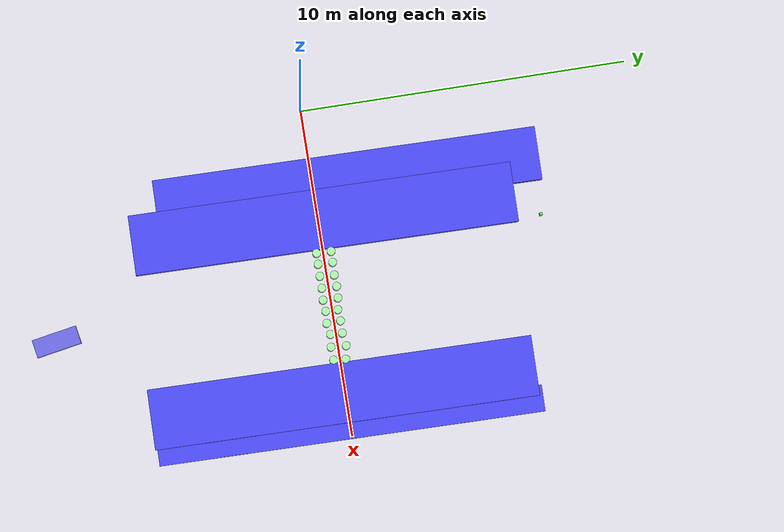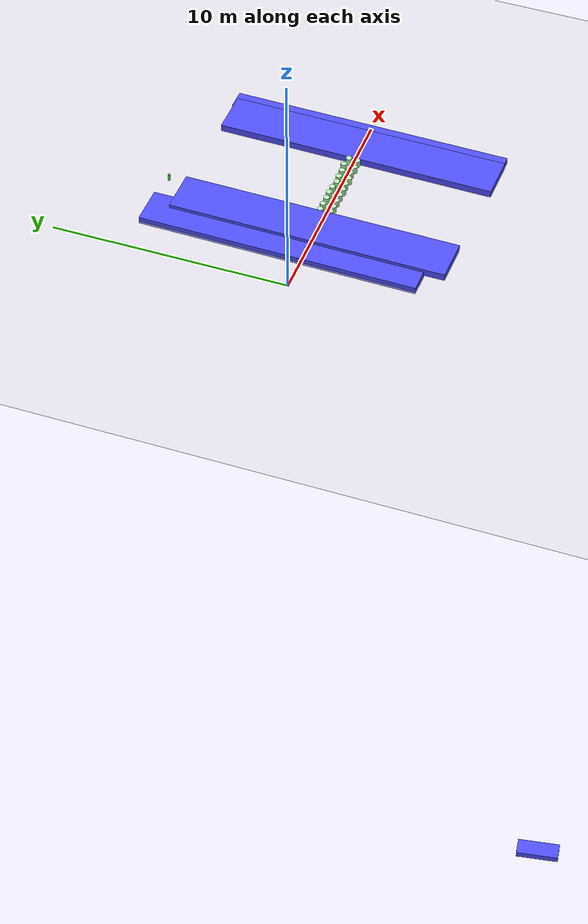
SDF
<sdf version="1.7">
 <world name="default">
  <light name="sun" type="directional">
   <pose>0 0 10 0 -0 0</pose>
   <diffuse>0.8 0.8 0.8 1</diffuse>
   <specular>0.2 0.2 0.2 1</specular>
   <attenuation>
    <range>1000</range>
    <constant>0.9</constant>
    <linear>0.01</linear>
    <quadratic>0.001</quadratic>
   </attenuation>
   <direction>-0.5 0.1 -0.9</direction>
   <spot><inner_angle>0</inner_angle><outer_angle>0</outer_angle><falloff>0</falloff></spot>
  </light>
  <model name="ground_plane">
   <static>1</static>
   <link name="link">
    <collision name="collision">
     <geometry><plane><normal>0 0 1</normal><size>100 100</size></plane></geometry>
     <surface><friction><ode><mu>100</mu><mu2>50</mu2></ode></friction></surface>
    </collision>
    <visual name="visual">
     <cast_shadows>0</cast_shadows>
     <geometry><plane><normal>0 0 1</normal><size>100 100</size></plane></geometry>
     <material>
      <script><uri>file://media/materials/scripts/gazebo.material</uri><name>Gazebo/Grey</name></script>
     </material>
    </visual>
   </link>
  </model>
  <gravity>0 0 -9.8</gravity>
  <magnetic_field>6e-06 2.3e-05 -4.2e-05</magnetic_field>
  <atmosphere type="adiabatic"/>
  <physics type="ode">
   <max_step_size>0.001</max_step_size>
   <real_time_factor>1</real_time_factor>
   <real_time_update_rate>1000</real_time_update_rate>
  </physics>
  <scene><ambient>0.4 0.4 0.4 1</ambient><background>0.7 0.7 0.7 1</background><shadows>1</shadows></scene>
  <spherical_coordinates>
   <surface_model>EARTH_WGS84</surface_model>
   <latitude_deg>0</latitude_deg>
   <longitude_deg>0</longitude_deg>
   <elevation>0</elevation>
   <heading_deg>0</heading_deg>
  </spherical_coordinates>
  <model name="ban_200_80_30_clone_clone">
   <link name="link">
    <inertial>
     <mass>1</mass>
     <inertia>
      <ixx>0.166667</ixx>
      <ixy>0</ixy>
      <ixz>0</ixz>
      <iyy>0.166667</iyy>
      <iyz>0</iyz>
      <izz>0.166667</izz>
     </inertia>
    </inertial>
    <visual name="visual">
     <geometry><box><size>2 0.8 0.3</size></box></geometry>
     <material>
      <script><name>Gazebo/Grey</name><uri>file://media/materials/scripts/gazebo.material</uri></script>
      <shader type="pixel"><normal_map>__default__</normal_map></shader>
      <ambient>0.3 0.3 1 1</ambient>
      <diffuse>0.7 0.7 0.7 1</diffuse>
      <specular>0.01 0.01 0.01 1</specular>
      <emissive>0 0 0 1</emissive>
     </material>
    </visual>
    <collision name="collision">
     <geometry><box><size>2 0.8 0.3</size></box></geometry>
     <surface>
      <friction>
       <ode><mu>1</mu><mu2>1</mu2><fdir1>0 0 0</fdir1><slip1>0</slip1><slip2>0</slip2></ode>
       <torsional>
        <coefficient>1</coefficient>
        <patch_radius>0</patch_radius>
        <surface_radius>0</surface_radius>
        <use_patch_radius>1</use_patch_radius>
        <ode><slip>0</slip></ode>
       </torsional>
      </friction>
      <bounce><restitution_coefficient>0</restitution_coefficient><threshold>1e+06</threshold></bounce>
      <contact>
       <collide_without_contact>0</collide_without_contact>
       <collide_without_contact_bitmask>1</collide_without_contact_bitmask>
       <collide_bitmask>1</collide_bitmask>
       <ode>
        <soft_cfm>0</soft_cfm>
        <soft_erp>0.2</soft_erp>
        <kp>1e+13</kp>
        <kd>1</kd>
        <max_vel>0.01</max_vel>
        <min_depth>0</min_depth>
       </ode>
       <bullet>
        <split_impulse>1</split_impulse>
        <split_impulse_penetration_threshold>-0.01</split_impulse_penetration_threshold>
        <soft_cfm>0</soft_cfm>
        <soft_erp>0.2</soft_erp>
        <kp>1e+13</kp>
        <kd>1</kd>
       </bullet>
      </contact>
     </surface>
    </collision>
   </link>
   <static>1</static>
   <pose>3.32802 -11.2985 -36.3188 0 0 -1.39548</pose>
  </model>
  <model name="ban_400_80_30_clone_clone">
   <link name="link">
    <inertial>
     <mass>1</mass>
     <inertia>
      <ixx>0.166667</ixx>
      <ixy>0</ixy>
      <ixz>0</ixz>
      <iyy>0.166667</iyy>
      <iyz>0</iyz>
      <izz>0.166667</izz>
     </inertia>
    </inertial>
    <visual name="visual">
     <geometry><box><size>11.703 1.83242 0.3</size></box></geometry>
     <material>
      <script><name>Gazebo/Grey</name><uri>file://media/materials/scripts/gazebo.material</uri></script>
      <shader type="pixel"><normal_map>__default__</normal_map></shader>
      <ambient>0.3 0.3 1 1</ambient>
      <diffuse>0.7 0.7 0.7 1</diffuse>
      <specular>0.01 0.01 0.01 1</specular>
      <emissive>0 0 0 1</emissive>
     </material>
    </visual>
    <collision name="collision">
     <geometry><box><size>11.703 1.83242 0.3</size></box></geometry>
     <surface>
      <friction>
       <ode><mu>1</mu><mu2>1</mu2><fdir1>0 0 0</fdir1><slip1>0</slip1><slip2>0</slip2></ode>
       <torsional>
        <coefficient>1</coefficient>
        <patch_radius>0</patch_radius>
        <surface_radius>0</surface_radius>
        <use_patch_radius>1</use_patch_radius>
        <ode><slip>0</slip></ode>
       </torsional>
      </friction>
      <bounce><restitution_coefficient>0</restitution_coefficient><threshold>1e+06</threshold></bounce>
      <contact>
       <collide_without_contact>0</collide_without_contact>
       <collide_without_contact_bitmask>1</collide_without_contact_bitmask>
       <collide_bitmask>1</collide_bitmask>
       <ode>
        <soft_cfm>0</soft_cfm>
        <soft_erp>0.2</soft_erp>
        <kp>1e+13</kp>
        <kd>1</kd>
        <max_vel>0.01</max_vel>
        <min_depth>0</min_depth>
       </ode>
       <bullet>
        <split_impulse>1</split_impulse>
        <split_impulse_penetration_threshold>-0.01</split_impulse_penetration_threshold>
        <soft_cfm>0</soft_cfm>
        <soft_erp>0.2</soft_erp>
        <kp>1e+13</kp>
        <kd>1</kd>
       </bullet>
      </contact>
     </surface>
    </collision>
   </link>
   <static>1</static>
   <pose>3.376 0.164957 0.141155 0 -0 1.55763</pose>
  </model>
  <model name="ban_400_80_30_clone">
   <link name="link">
    <inertial>
     <mass>1</mass>
     <inertia>
      <ixx>0.166667</ixx>
      <ixy>0</ixy>
      <ixz>0</ixz>
      <iyy>0.166667</iyy>
      <iyz>0</iyz>
      <izz>0.166667</izz>
     </inertia>
    </inertial>
    <visual name="visual">
     <geometry><box><size>11.7457 0.8 0.3</size></box></geometry>
     <material>
      <script><name>Gazebo/Grey</name><uri>file://media/materials/scripts/gazebo.material</uri></script>
      <shader type="pixel"><normal_map>__default__</normal_map></shader>
      <ambient>0.3 0.3 1 1</ambient>
      <diffuse>0.7 0.7 0.7 1</diffuse>
      <specular>0.01 0.01 0.01 1</specular>
      <emissive>0 0 0 1</emissive>
     </material>
    </visual>
    <collision name="collision">
     <geometry><box><size>11.7457 0.8 0.3</size></box></geometry>
     <surface>
      <friction>
       <ode><mu>1</mu><mu2>1</mu2><fdir1>0 0 0</fdir1><slip1>0</slip1><slip2>0</slip2></ode>
       <torsional>
        <coefficient>1</coefficient>
        <patch_radius>0</patch_radius>
        <surface_radius>0</surface_radius>
        <use_patch_radius>1</use_patch_radius>
        <ode><slip>0</slip></ode>
       </torsional>
      </friction>
      <bounce><restitution_coefficient>0</restitution_coefficient><threshold>1e+06</threshold></bounce>
      <contact>
       <collide_without_contact>0</collide_without_contact>
       <collide_without_contact_bitmask>1</collide_without_contact_bitmask>
       <collide_bitmask>1</collide_bitmask>
       <ode>
        <soft_cfm>0</soft_cfm>
        <soft_erp>0.2</soft_erp>
        <kp>1e+13</kp>
        <kd>1</kd>
        <max_vel>0.01</max_vel>
        <min_depth>0</min_depth>
       </ode>
       <bullet>
        <split_impulse>1</split_impulse>
        <split_impulse_penetration_threshold>-0.01</split_impulse_penetration_threshold>
        <soft_cfm>0</soft_cfm>
        <soft_erp>0.2</soft_erp>
        <kp>1e+13</kp>
        <kd>1</kd>
       </bullet>
      </contact>
     </surface>
    </collision>
   </link>
   <static>1</static>
   <pose>9.68721 0.016567 0 0 -0 1.55763</pose>
  </model>
  <model name="mhz_8_30_clone">
   <link name="link">
    <inertial>
     <mass>1</mass>
     <inertia>
      <ixx>0.166667</ixx>
      <ixy>0</ixy>
      <ixz>0</ixz>
      <iyy>0.166667</iyy>
      <iyz>0</iyz>
      <izz>0.166667</izz>
     </inertia>
    </inertial>
    <visual name="visual">
     <geometry><box><size>0.08 0.08 0.3</size></box></geometry>
     <material>
      <script><name>Gazebo/Grey</name><uri>file://media/materials/scripts/gazebo.material</uri></script>
      <shader type="pixel"><normal_map>__default__</normal_map></shader>
      <ambient>0.3 1 0.3 1</ambient>
      <diffuse>0.7 0.7 0.7 1</diffuse>
      <specular>0.01 0.01 0.01 1</specular>
      <emissive>0 0 0 1</emissive>
     </material>
    </visual>
    <collision name="collision">
     <geometry><box><size>0.08 0.08 0.3</size></box></geometry>
     <surface>
      <friction>
       <ode><mu>1</mu><mu2>1</mu2><fdir1>0 0 0</fdir1><slip1>0</slip1><slip2>0</slip2></ode>
       <torsional>
        <coefficient>1</coefficient>
        <patch_radius>0</patch_radius>
        <surface_radius>0</surface_radius>
        <use_patch_radius>1</use_patch_radius>
        <ode><slip>0</slip></ode>
       </torsional>
      </friction>
      <bounce><restitution_coefficient>0</restitution_coefficient><threshold>1e+06</threshold></bounce>
      <contact>
       <collide_without_contact>0</collide_without_contact>
       <collide_without_contact_bitmask>1</collide_without_contact_bitmask>
       <collide_bitmask>1</collide_bitmask>
       <ode>
        <soft_cfm>0</soft_cfm>
        <soft_erp>0.2</soft_erp>
        <kp>1e+13</kp>
        <kd>1</kd>
        <max_vel>0.01</max_vel>
        <min_depth>0</min_depth>
       </ode>
       <bullet>
        <split_impulse>1</split_impulse>
        <split_impulse_penetration_threshold>-0.01</split_impulse_penetration_threshold>
        <soft_cfm>0</soft_cfm>
        <soft_erp>0.2</soft_erp>
        <kp>1e+13</kp>
        <kd>1</kd>
       </bullet>
      </contact>
     </surface>
    </collision>
   </link>
   <static>1</static>
   <pose>4.25594 6.71166 0.134436 0 -0 0</pose>
  </model>
  <model name="ban_400_80_30_clone_clone_clone">
   <link name="link">
    <inertial>
     <mass>1</mass>
     <inertia>
      <ixx>0.166667</ixx>
      <ixy>0</ixy>
      <ixz>0</ixz>
      <iyy>0.166667</iyy>
      <iyz>0</iyz>
      <izz>0.166667</izz>
     </inertia>
    </inertial>
    <visual name="visual">
     <geometry><box><size>11.703 1.83242 0.3</size></box></geometry>
     <material>
      <script><name>Gazebo/Grey</name><uri>file://media/materials/scripts/gazebo.material</uri></script>
      <shader type="pixel"><normal_map>__default__</normal_map></shader>
      <ambient>0.3 0.3 1 1</ambient>
      <diffuse>0.7 0.7 0.7 1</diffuse>
      <specular>0.01 0.01 0.01 1</specular>
      <emissive>0 0 0 1</emissive>
     </material>
    </visual>
    <collision name="collision">
     <geometry><box><size>11.703 1.83242 0.3</size></box></geometry>
     <surface>
      <friction>
       <ode><mu>1</mu><mu2>1</mu2><fdir1>0 0 0</fdir1><slip1>0</slip1><slip2>0</slip2></ode>
       <torsional>
        <coefficient>1</coefficient>
        <patch_radius>0</patch_radius>
        <surface_radius>0</surface_radius>
        <use_patch_radius>1</use_patch_radius>
        <ode><slip>0</slip></ode>
       </torsional>
      </friction>
      <bounce><restitution_coefficient>0</restitution_coefficient><threshold>1e+06</threshold></bounce>
      <contact>
       <collide_without_contact>0</collide_without_contact>
       <collide_without_contact_bitmask>1</collide_without_contact_bitmask>
       <collide_bitmask>1</collide_bitmask>
       <ode>
        <soft_cfm>0</soft_cfm>
        <soft_erp>0.2</soft_erp>
        <kp>1e+13</kp>
        <kd>1</kd>
        <max_vel>0.01</max_vel>
        <min_depth>0</min_depth>
       </ode>
       <bullet>
        <split_impulse>1</split_impulse>
        <split_impulse_penetration_threshold>-0.01</split_impulse_penetration_threshold>
        <soft_cfm>0</soft_cfm>
        <soft_erp>0.2</soft_erp>
        <kp>1e+13</kp>
        <kd>1</kd>
       </bullet>
      </contact>
     </surface>
    </collision>
   </link>
   <static>1</static>
   <pose>8.67792 -0.051809 0.139007 0 -0 1.55763</pose>
  </model>
  <model name="mhz_y_25_30_clone_13_clone_clone_9_clone">
   <link name="link">
    <inertial>
     <mass>1</mass>
     <inertia><ixx>0.145833</ixx><ixy>0</ixy><ixz>0</ixz><iyy>0.145833</iyy><iyz>0</iyz><izz>0.125</izz></inertia>
    </inertial>
    <visual name="visual">
     <geometry><cylinder><radius>0.125</radius><length>0.3</length></cylinder></geometry>
     <material>
      <script><name>Gazebo/Grey</name><uri>file://media/materials/scripts/gazebo.material</uri></script>
      <shader type="pixel"><normal_map>__default__</normal_map></shader>
      <ambient>0 1 0 0</ambient>
      <diffuse>0.7 1 0.7 1</diffuse>
      <specular>0.01 0.01 0.01 1</specular>
      <emissive>0 0 0 1</emissive>
     </material>
    </visual>
    <collision name="collision">
     <geometry><cylinder><radius>0.125</radius><length>0.3</length></cylinder></geometry>
     <surface>
      <friction>
       <ode><mu>1</mu><mu2>1</mu2><fdir1>0 0 0</fdir1><slip1>0</slip1><slip2>0</slip2></ode>
       <torsional>
        <coefficient>1</coefficient>
        <patch_radius>0</patch_radius>
        <surface_radius>0</surface_radius>
        <use_patch_radius>1</use_patch_radius>
        <ode><slip>0</slip></ode>
       </torsional>
      </friction>
      <bounce><restitution_coefficient>0</restitution_coefficient><threshold>1e+06</threshold></bounce>
      <contact>
       <collide_without_contact>0</collide_without_contact>
       <collide_without_contact_bitmask>1</collide_without_contact_bitmask>
       <collide_bitmask>1</collide_bitmask>
       <ode>
        <soft_cfm>0</soft_cfm>
        <soft_erp>0.2</soft_erp>
        <kp>1e+13</kp>
        <kd>1</kd>
        <max_vel>0.01</max_vel>
        <min_depth>0</min_depth>
       </ode>
       <bullet>
        <split_impulse>1</split_impulse>
        <split_impulse_penetration_threshold>-0.01</split_impulse_penetration_threshold>
        <soft_cfm>0</soft_cfm>
        <soft_erp>0.2</soft_erp>
        <kp>1e+13</kp>
        <kd>1</kd>
       </bullet>
      </contact>
     </surface>
    </collision>
   </link>
   <static>1</static>
   <pose>4.3916 0.246906 0.14679 0 -0 0</pose>
  </model>
  <model name="mhz_y_25_30_clone_13_clone_clone_9_clone_0">
   <link name="link">
    <inertial>
     <mass>1</mass>
     <inertia><ixx>0.145833</ixx><ixy>0</ixy><ixz>0</ixz><iyy>0.145833</iyy><iyz>0</iyz><izz>0.125</izz></inertia>
    </inertial>
    <visual name="visual">
     <geometry><cylinder><radius>0.125</radius><length>0.3</length></cylinder></geometry>
     <material>
      <script><name>Gazebo/Grey</name><uri>file://media/materials/scripts/gazebo.material</uri></script>
      <shader type="pixel"><normal_map>__default__</normal_map></shader>
      <ambient>0 1 0 0</ambient>
      <diffuse>0.7 1 0.7 1</diffuse>
      <specular>0.01 0.01 0.01 1</specular>
      <emissive>0 0 0 1</emissive>
     </material>
    </visual>
    <collision name="collision">
     <geometry><cylinder><radius>0.125</radius><length>0.3</length></cylinder></geometry>
     <surface>
      <friction>
       <ode><mu>1</mu><mu2>1</mu2><fdir1>0 0 0</fdir1><slip1>0</slip1><slip2>0</slip2></ode>
       <torsional>
        <coefficient>1</coefficient>
        <patch_radius>0</patch_radius>
        <surface_radius>0</surface_radius>
        <use_patch_radius>1</use_patch_radius>
        <ode><slip>0</slip></ode>
       </torsional>
      </friction>
      <bounce><restitution_coefficient>0</restitution_coefficient><threshold>1e+06</threshold></bounce>
      <contact>
       <collide_without_contact>0</collide_without_contact>
       <collide_without_contact_bitmask>1</collide_without_contact_bitmask>
       <collide_bitmask>1</collide_bitmask>
       <ode>
        <soft_cfm>0</soft_cfm>
        <soft_erp>0.2</soft_erp>
        <kp>1e+13</kp>
        <kd>1</kd>
        <max_vel>0.01</max_vel>
        <min_depth>0</min_depth>
       </ode>
       <bullet>
        <split_impulse>1</split_impulse>
        <split_impulse_penetration_threshold>-0.01</split_impulse_penetration_threshold>
        <soft_cfm>0</soft_cfm>
        <soft_erp>0.2</soft_erp>
        <kp>1e+13</kp>
        <kd>1</kd>
       </bullet>
      </contact>
     </surface>
    </collision>
   </link>
   <static>1</static>
   <pose>4.38543 -0.19628 0.14679 0 -0 0</pose>
  </model>
  <model name="mhz_y_25_30_clone_13_clone_clone_9_clone_1">
   <link name="link">
    <inertial>
     <mass>1</mass>
     <inertia><ixx>0.145833</ixx><ixy>0</ixy><ixz>0</ixz><iyy>0.145833</iyy><iyz>0</iyz><izz>0.125</izz></inertia>
    </inertial>
    <visual name="visual">
     <geometry><cylinder><radius>0.125</radius><length>0.3</length></cylinder></geometry>
     <material>
      <script><name>Gazebo/Grey</name><uri>file://media/materials/scripts/gazebo.material</uri></script>
      <shader type="pixel"><normal_map>__default__</normal_map></shader>
      <ambient>0 1 0 0</ambient>
      <diffuse>0.7 1 0.7 1</diffuse>
      <specular>0.01 0.01 0.01 1</specular>
      <emissive>0 0 0 1</emissive>
     </material>
    </visual>
    <collision name="collision">
     <geometry><cylinder><radius>0.125</radius><length>0.3</length></cylinder></geometry>
     <surface>
      <friction>
       <ode><mu>1</mu><mu2>1</mu2><fdir1>0 0 0</fdir1><slip1>0</slip1><slip2>0</slip2></ode>
       <torsional>
        <coefficient>1</coefficient>
        <patch_radius>0</patch_radius>
        <surface_radius>0</surface_radius>
        <use_patch_radius>1</use_patch_radius>
        <ode><slip>0</slip></ode>
       </torsional>
      </friction>
      <bounce><restitution_coefficient>0</restitution_coefficient><threshold>1e+06</threshold></bounce>
      <contact>
       <collide_without_contact>0</collide_without_contact>
       <collide_without_contact_bitmask>1</collide_without_contact_bitmask>
       <collide_bitmask>1</collide_bitmask>
       <ode>
        <soft_cfm>0</soft_cfm>
        <soft_erp>0.2</soft_erp>
        <kp>1e+13</kp>
        <kd>1</kd>
        <max_vel>0.01</max_vel>
        <min_depth>0</min_depth>
       </ode>
       <bullet>
        <split_impulse>1</split_impulse>
        <split_impulse_penetration_threshold>-0.01</split_impulse_penetration_threshold>
        <soft_cfm>0</soft_cfm>
        <soft_erp>0.2</soft_erp>
        <kp>1e+13</kp>
        <kd>1</kd>
       </bullet>
      </contact>
     </surface>
    </collision>
   </link>
   <static>1</static>
   <pose>4.71749 -0.205645 0.14679 0 -0 0</pose>
  </model>
  <model name="mhz_y_25_30_clone_13_clone_clone_9_clone_2">
   <link name="link">
    <inertial>
     <mass>1</mass>
     <inertia><ixx>0.145833</ixx><ixy>0</ixy><ixz>0</ixz><iyy>0.145833</iyy><iyz>0</iyz><izz>0.125</izz></inertia>
    </inertial>
    <visual name="visual">
     <geometry><cylinder><radius>0.125</radius><length>0.3</length></cylinder></geometry>
     <material>
      <script><name>Gazebo/Grey</name><uri>file://media/materials/scripts/gazebo.material</uri></script>
      <shader type="pixel"><normal_map>__default__</normal_map></shader>
      <ambient>0 1 0 0</ambient>
      <diffuse>0.7 1 0.7 1</diffuse>
      <specular>0.01 0.01 0.01 1</specular>
      <emissive>0 0 0 1</emissive>
     </material>
    </visual>
    <collision name="collision">
     <geometry><cylinder><radius>0.125</radius><length>0.3</length></cylinder></geometry>
     <surface>
      <friction>
       <ode><mu>1</mu><mu2>1</mu2><fdir1>0 0 0</fdir1><slip1>0</slip1><slip2>0</slip2></ode>
       <torsional>
        <coefficient>1</coefficient>
        <patch_radius>0</patch_radius>
        <surface_radius>0</surface_radius>
        <use_patch_radius>1</use_patch_radius>
        <ode><slip>0</slip></ode>
       </torsional>
      </friction>
      <bounce><restitution_coefficient>0</restitution_coefficient><threshold>1e+06</threshold></bounce>
      <contact>
       <collide_without_contact>0</collide_without_contact>
       <collide_without_contact_bitmask>1</collide_without_contact_bitmask>
       <collide_bitmask>1</collide_bitmask>
       <ode>
        <soft_cfm>0</soft_cfm>
        <soft_erp>0.2</soft_erp>
        <kp>1e+13</kp>
        <kd>1</kd>
        <max_vel>0.01</max_vel>
        <min_depth>0</min_depth>
       </ode>
       <bullet>
        <split_impulse>1</split_impulse>
        <split_impulse_penetration_threshold>-0.01</split_impulse_penetration_threshold>
        <soft_cfm>0</soft_cfm>
        <soft_erp>0.2</soft_erp>
        <kp>1e+13</kp>
        <kd>1</kd>
       </bullet>
      </contact>
     </surface>
    </collision>
   </link>
   <static>1</static>
   <pose>4.72896 0.241123 0.14679 0 -0 0</pose>
  </model>
  <model name="mhz_y_25_30_clone_13_clone_clone_9_clone_3">
   <link name="link">
    <inertial>
     <mass>1</mass>
     <inertia><ixx>0.145833</ixx><ixy>0</ixy><ixz>0</ixz><iyy>0.145833</iyy><iyz>0</iyz><izz>0.125</izz></inertia>
    </inertial>
    <visual name="visual">
     <geometry><cylinder><radius>0.125</radius><length>0.3</length></cylinder></geometry>
     <material>
      <script><name>Gazebo/Grey</name><uri>file://media/materials/scripts/gazebo.material</uri></script>
      <shader type="pixel"><normal_map>__default__</normal_map></shader>
      <ambient>0 1 0 0</ambient>
      <diffuse>0.7 1 0.7 1</diffuse>
      <specular>0.01 0.01 0.01 1</specular>
      <emissive>0 0 0 1</emissive>
     </material>
    </visual>
    <collision name="collision">
     <geometry><cylinder><radius>0.125</radius><length>0.3</length></cylinder></geometry>
     <surface>
      <friction>
       <ode><mu>1</mu><mu2>1</mu2><fdir1>0 0 0</fdir1><slip1>0</slip1><slip2>0</slip2></ode>
       <torsional>
        <coefficient>1</coefficient>
        <patch_radius>0</patch_radius>
        <surface_radius>0</surface_radius>
        <use_patch_radius>1</use_patch_radius>
        <ode><slip>0</slip></ode>
       </torsional>
      </friction>
      <bounce><restitution_coefficient>0</restitution_coefficient><threshold>1e+06</threshold></bounce>
      <contact>
       <collide_without_contact>0</collide_without_contact>
       <collide_without_contact_bitmask>1</collide_without_contact_bitmask>
       <collide_bitmask>1</collide_bitmask>
       <ode>
        <soft_cfm>0</soft_cfm>
        <soft_erp>0.2</soft_erp>
        <kp>1e+13</kp>
        <kd>1</kd>
        <max_vel>0.01</max_vel>
        <min_depth>0</min_depth>
       </ode>
       <bullet>
        <split_impulse>1</split_impulse>
        <split_impulse_penetration_threshold>-0.01</split_impulse_penetration_threshold>
        <soft_cfm>0</soft_cfm>
        <soft_erp>0.2</soft_erp>
        <kp>1e+13</kp>
        <kd>1</kd>
       </bullet>
      </contact>
     </surface>
    </collision>
   </link>
   <static>1</static>
   <pose>5.0857 -0.207351 0.14679 0 -0 0</pose>
  </model>
  <model name="mhz_y_25_30_clone_13_clone_clone_9_clone_4">
   <link name="link">
    <inertial>
     <mass>1</mass>
     <inertia><ixx>0.145833</ixx><ixy>0</ixy><ixz>0</ixz><iyy>0.145833</iyy><iyz>0</iyz><izz>0.125</izz></inertia>
    </inertial>
    <visual name="visual">
     <geometry><cylinder><radius>0.125</radius><length>0.3</length></cylinder></geometry>
     <material>
      <script><name>Gazebo/Grey</name><uri>file://media/materials/scripts/gazebo.material</uri></script>
      <shader type="pixel"><normal_map>__default__</normal_map></shader>
      <ambient>0 1 0 0</ambient>
      <diffuse>0.7 1 0.7 1</diffuse>
      <specular>0.01 0.01 0.01 1</specular>
      <emissive>0 0 0 1</emissive>
     </material>
    </visual>
    <collision name="collision">
     <geometry><cylinder><radius>0.125</radius><length>0.3</length></cylinder></geometry>
     <surface>
      <friction>
       <ode><mu>1</mu><mu2>1</mu2><fdir1>0 0 0</fdir1><slip1>0</slip1><slip2>0</slip2></ode>
       <torsional>
        <coefficient>1</coefficient>
        <patch_radius>0</patch_radius>
        <surface_radius>0</surface_radius>
        <use_patch_radius>1</use_patch_radius>
        <ode><slip>0</slip></ode>
       </torsional>
      </friction>
      <bounce><restitution_coefficient>0</restitution_coefficient><threshold>1e+06</threshold></bounce>
      <contact>
       <collide_without_contact>0</collide_without_contact>
       <collide_without_contact_bitmask>1</collide_without_contact_bitmask>
       <collide_bitmask>1</collide_bitmask>
       <ode>
        <soft_cfm>0</soft_cfm>
        <soft_erp>0.2</soft_erp>
        <kp>1e+13</kp>
        <kd>1</kd>
        <max_vel>0.01</max_vel>
        <min_depth>0</min_depth>
       </ode>
       <bullet>
        <split_impulse>1</split_impulse>
        <split_impulse_penetration_threshold>-0.01</split_impulse_penetration_threshold>
        <soft_cfm>0</soft_cfm>
        <soft_erp>0.2</soft_erp>
        <kp>1e+13</kp>
        <kd>1</kd>
       </bullet>
      </contact>
     </surface>
    </collision>
   </link>
   <static>1</static>
   <pose>5.11503 0.228722 0.14679 0 -0 0</pose>
  </model>
  <model name="mhz_y_25_30_clone_13_clone_clone_9_clone_7">
   <link name="link">
    <inertial>
     <mass>1</mass>
     <inertia><ixx>0.145833</ixx><ixy>0</ixy><ixz>0</ixz><iyy>0.145833</iyy><iyz>0</iyz><izz>0.125</izz></inertia>
    </inertial>
    <visual name="visual">
     <geometry><cylinder><radius>0.125</radius><length>0.3</length></cylinder></geometry>
     <material>
      <script><name>Gazebo/Grey</name><uri>file://media/materials/scripts/gazebo.material</uri></script>
      <shader type="pixel"><normal_map>__default__</normal_map></shader>
      <ambient>0 1 0 0</ambient>
      <diffuse>0.7 1 0.7 1</diffuse>
      <specular>0.01 0.01 0.01 1</specular>
      <emissive>0 0 0 1</emissive>
     </material>
    </visual>
    <collision name="collision">
     <geometry><cylinder><radius>0.125</radius><length>0.3</length></cylinder></geometry>
     <surface>
      <friction>
       <ode><mu>1</mu><mu2>1</mu2><fdir1>0 0 0</fdir1><slip1>0</slip1><slip2>0</slip2></ode>
       <torsional>
        <coefficient>1</coefficient>
        <patch_radius>0</patch_radius>
        <surface_radius>0</surface_radius>
        <use_patch_radius>1</use_patch_radius>
        <ode><slip>0</slip></ode>
       </torsional>
      </friction>
      <bounce><restitution_coefficient>0</restitution_coefficient><threshold>1e+06</threshold></bounce>
      <contact>
       <collide_without_contact>0</collide_without_contact>
       <collide_without_contact_bitmask>1</collide_without_contact_bitmask>
       <collide_bitmask>1</collide_bitmask>
       <ode>
        <soft_cfm>0</soft_cfm>
        <soft_erp>0.2</soft_erp>
        <kp>1e+13</kp>
        <kd>1</kd>
        <max_vel>0.01</max_vel>
        <min_depth>0</min_depth>
       </ode>
       <bullet>
        <split_impulse>1</split_impulse>
        <split_impulse_penetration_threshold>-0.01</split_impulse_penetration_threshold>
        <soft_cfm>0</soft_cfm>
        <soft_erp>0.2</soft_erp>
        <kp>1e+13</kp>
        <kd>1</kd>
       </bullet>
      </contact>
     </surface>
    </collision>
   </link>
   <static>1</static>
   <pose>5.45421 -0.205084 0.14679 0 -0 0</pose>
  </model>
  <model name="mhz_y_25_30_clone_13_clone_clone_9_clone_8">
   <link name="link">
    <inertial>
     <mass>1</mass>
     <inertia><ixx>0.145833</ixx><ixy>0</ixy><ixz>0</ixz><iyy>0.145833</iyy><iyz>0</iyz><izz>0.125</izz></inertia>
    </inertial>
    <visual name="visual">
     <geometry><cylinder><radius>0.125</radius><length>0.3</length></cylinder></geometry>
     <material>
      <script><name>Gazebo/Grey</name><uri>file://media/materials/scripts/gazebo.material</uri></script>
      <shader type="pixel"><normal_map>__default__</normal_map></shader>
      <ambient>0 1 0 0</ambient>
      <diffuse>0.7 1 0.7 1</diffuse>
      <specular>0.01 0.01 0.01 1</specular>
      <emissive>0 0 0 1</emissive>
     </material>
    </visual>
    <collision name="collision">
     <geometry><cylinder><radius>0.125</radius><length>0.3</length></cylinder></geometry>
     <surface>
      <friction>
       <ode><mu>1</mu><mu2>1</mu2><fdir1>0 0 0</fdir1><slip1>0</slip1><slip2>0</slip2></ode>
       <torsional>
        <coefficient>1</coefficient>
        <patch_radius>0</patch_radius>
        <surface_radius>0</surface_radius>
        <use_patch_radius>1</use_patch_radius>
        <ode><slip>0</slip></ode>
       </torsional>
      </friction>
      <bounce><restitution_coefficient>0</restitution_coefficient><threshold>1e+06</threshold></bounce>
      <contact>
       <collide_without_contact>0</collide_without_contact>
       <collide_without_contact_bitmask>1</collide_without_contact_bitmask>
       <collide_bitmask>1</collide_bitmask>
       <ode>
        <soft_cfm>0</soft_cfm>
        <soft_erp>0.2</soft_erp>
        <kp>1e+13</kp>
        <kd>1</kd>
        <max_vel>0.01</max_vel>
        <min_depth>0</min_depth>
       </ode>
       <bullet>
        <split_impulse>1</split_impulse>
        <split_impulse_penetration_threshold>-0.01</split_impulse_penetration_threshold>
        <soft_cfm>0</soft_cfm>
        <soft_erp>0.2</soft_erp>
        <kp>1e+13</kp>
        <kd>1</kd>
       </bullet>
      </contact>
     </surface>
    </collision>
   </link>
   <static>1</static>
   <pose>5.46639 0.24844 0.14679 0 -0 0</pose>
  </model>
  <model name="mhz_y_25_30_clone_13_clone_clone_9_clone_9">
   <link name="link">
    <inertial>
     <mass>1</mass>
     <inertia><ixx>0.145833</ixx><ixy>0</ixy><ixz>0</ixz><iyy>0.145833</iyy><iyz>0</iyz><izz>0.125</izz></inertia>
    </inertial>
    <visual name="visual">
     <geometry><cylinder><radius>0.125</radius><length>0.3</length></cylinder></geometry>
     <material>
      <script><name>Gazebo/Grey</name><uri>file://media/materials/scripts/gazebo.material</uri></script>
      <shader type="pixel"><normal_map>__default__</normal_map></shader>
      <ambient>0 1 0 0</ambient>
      <diffuse>0.7 1 0.7 1</diffuse>
      <specular>0.01 0.01 0.01 1</specular>
      <emissive>0 0 0 1</emissive>
     </material>
    </visual>
    <collision name="collision">
     <geometry><cylinder><radius>0.125</radius><length>0.3</length></cylinder></geometry>
     <surface>
      <friction>
       <ode><mu>1</mu><mu2>1</mu2><fdir1>0 0 0</fdir1><slip1>0</slip1><slip2>0</slip2></ode>
       <torsional>
        <coefficient>1</coefficient>
        <patch_radius>0</patch_radius>
        <surface_radius>0</surface_radius>
        <use_patch_radius>1</use_patch_radius>
        <ode><slip>0</slip></ode>
       </torsional>
      </friction>
      <bounce><restitution_coefficient>0</restitution_coefficient><threshold>1e+06</threshold></bounce>
      <contact>
       <collide_without_contact>0</collide_without_contact>
       <collide_without_contact_bitmask>1</collide_without_contact_bitmask>
       <collide_bitmask>1</collide_bitmask>
       <ode>
        <soft_cfm>0</soft_cfm>
        <soft_erp>0.2</soft_erp>
        <kp>1e+13</kp>
        <kd>1</kd>
        <max_vel>0.01</max_vel>
        <min_depth>0</min_depth>
       </ode>
       <bullet>
        <split_impulse>1</split_impulse>
        <split_impulse_penetration_threshold>-0.01</split_impulse_penetration_threshold>
        <soft_cfm>0</soft_cfm>
        <soft_erp>0.2</soft_erp>
        <kp>1e+13</kp>
        <kd>1</kd>
       </bullet>
      </contact>
     </surface>
    </collision>
   </link>
   <static>1</static>
   <pose>5.81859 -0.224235 0.14679 0 -0 0</pose>
  </model>
  <model name="mhz_y_25_30_clone_13_clone_clone_9_clone_10">
   <link name="link">
    <inertial>
     <mass>1</mass>
     <inertia><ixx>0.145833</ixx><ixy>0</ixy><ixz>0</ixz><iyy>0.145833</iyy><iyz>0</iyz><izz>0.125</izz></inertia>
    </inertial>
    <visual name="visual">
     <geometry><cylinder><radius>0.125</radius><length>0.3</length></cylinder></geometry>
     <material>
      <script><name>Gazebo/Grey</name><uri>file://media/materials/scripts/gazebo.material</uri></script>
      <shader type="pixel"><normal_map>__default__</normal_map></shader>
      <ambient>0 1 0 0</ambient>
      <diffuse>0.7 1 0.7 1</diffuse>
      <specular>0.01 0.01 0.01 1</specular>
      <emissive>0 0 0 1</emissive>
     </material>
    </visual>
    <collision name="collision">
     <geometry><cylinder><radius>0.125</radius><length>0.3</length></cylinder></geometry>
     <surface>
      <friction>
       <ode><mu>1</mu><mu2>1</mu2><fdir1>0 0 0</fdir1><slip1>0</slip1><slip2>0</slip2></ode>
       <torsional>
        <coefficient>1</coefficient>
        <patch_radius>0</patch_radius>
        <surface_radius>0</surface_radius>
        <use_patch_radius>1</use_patch_radius>
        <ode><slip>0</slip></ode>
       </torsional>
      </friction>
      <bounce><restitution_coefficient>0</restitution_coefficient><threshold>1e+06</threshold></bounce>
      <contact>
       <collide_without_contact>0</collide_without_contact>
       <collide_without_contact_bitmask>1</collide_without_contact_bitmask>
       <collide_bitmask>1</collide_bitmask>
       <ode>
        <soft_cfm>0</soft_cfm>
        <soft_erp>0.2</soft_erp>
        <kp>1e+13</kp>
        <kd>1</kd>
        <max_vel>0.01</max_vel>
        <min_depth>0</min_depth>
       </ode>
       <bullet>
        <split_impulse>1</split_impulse>
        <split_impulse_penetration_threshold>-0.01</split_impulse_penetration_threshold>
        <soft_cfm>0</soft_cfm>
        <soft_erp>0.2</soft_erp>
        <kp>1e+13</kp>
        <kd>1</kd>
       </bullet>
      </contact>
     </surface>
    </collision>
   </link>
   <static>1</static>
   <pose>5.82125 0.231921 0.14679 0 -0 0</pose>
  </model>
  <model name="mhz_y_25_30_clone_13_clone_clone_9_clone_9_clone">
   <link name="link">
    <inertial>
     <mass>1</mass>
     <inertia><ixx>0.145833</ixx><ixy>0</ixy><ixz>0</ixz><iyy>0.145833</iyy><iyz>0</iyz><izz>0.125</izz></inertia>
    </inertial>
    <visual name="visual">
     <geometry><cylinder><radius>0.125</radius><length>0.3</length></cylinder></geometry>
     <material>
      <script><name>Gazebo/Grey</name><uri>file://media/materials/scripts/gazebo.material</uri></script>
      <shader type="pixel"><normal_map>__default__</normal_map></shader>
      <ambient>0 1 0 0</ambient>
      <diffuse>0.7 1 0.7 1</diffuse>
      <specular>0.01 0.01 0.01 1</specular>
      <emissive>0 0 0 1</emissive>
     </material>
    </visual>
    <collision name="collision">
     <geometry><cylinder><radius>0.125</radius><length>0.3</length></cylinder></geometry>
     <surface>
      <friction>
       <ode><mu>1</mu><mu2>1</mu2><fdir1>0 0 0</fdir1><slip1>0</slip1><slip2>0</slip2></ode>
       <torsional>
        <coefficient>1</coefficient>
        <patch_radius>0</patch_radius>
        <surface_radius>0</surface_radius>
        <use_patch_radius>1</use_patch_radius>
        <ode><slip>0</slip></ode>
       </torsional>
      </friction>
      <bounce><restitution_coefficient>0</restitution_coefficient><threshold>1e+06</threshold></bounce>
      <contact>
       <collide_without_contact>0</collide_without_contact>
       <collide_without_contact_bitmask>1</collide_without_contact_bitmask>
       <collide_bitmask>1</collide_bitmask>
       <ode>
        <soft_cfm>0</soft_cfm>
        <soft_erp>0.2</soft_erp>
        <kp>1e+13</kp>
        <kd>1</kd>
        <max_vel>0.01</max_vel>
        <min_depth>0</min_depth>
       </ode>
       <bullet>
        <split_impulse>1</split_impulse>
        <split_impulse_penetration_threshold>-0.01</split_impulse_penetration_threshold>
        <soft_cfm>0</soft_cfm>
        <soft_erp>0.2</soft_erp>
        <kp>1e+13</kp>
        <kd>1</kd>
       </bullet>
      </contact>
     </surface>
    </collision>
   </link>
   <static>1</static>
   <pose>6.1637 -0.196664 0.14679 0 -0 0</pose>
  </model>
  <model name="mhz_y_25_30_clone_13_clone_clone_9_clone_9_clone_0">
   <link name="link">
    <inertial>
     <mass>1</mass>
     <inertia><ixx>0.145833</ixx><ixy>0</ixy><ixz>0</ixz><iyy>0.145833</iyy><iyz>0</iyz><izz>0.125</izz></inertia>
    </inertial>
    <visual name="visual">
     <geometry><cylinder><radius>0.125</radius><length>0.3</length></cylinder></geometry>
     <material>
      <script><name>Gazebo/Grey</name><uri>file://media/materials/scripts/gazebo.material</uri></script>
      <shader type="pixel"><normal_map>__default__</normal_map></shader>
      <ambient>0 1 0 0</ambient>
      <diffuse>0.7 1 0.7 1</diffuse>
      <specular>0.01 0.01 0.01 1</specular>
      <emissive>0 0 0 1</emissive>
     </material>
    </visual>
    <collision name="collision">
     <geometry><cylinder><radius>0.125</radius><length>0.3</length></cylinder></geometry>
     <surface>
      <friction>
       <ode><mu>1</mu><mu2>1</mu2><fdir1>0 0 0</fdir1><slip1>0</slip1><slip2>0</slip2></ode>
       <torsional>
        <coefficient>1</coefficient>
        <patch_radius>0</patch_radius>
        <surface_radius>0</surface_radius>
        <use_patch_radius>1</use_patch_radius>
        <ode><slip>0</slip></ode>
       </torsional>
      </friction>
      <bounce><restitution_coefficient>0</restitution_coefficient><threshold>1e+06</threshold></bounce>
      <contact>
       <collide_without_contact>0</collide_without_contact>
       <collide_without_contact_bitmask>1</collide_without_contact_bitmask>
       <collide_bitmask>1</collide_bitmask>
       <ode>
        <soft_cfm>0</soft_cfm>
        <soft_erp>0.2</soft_erp>
        <kp>1e+13</kp>
        <kd>1</kd>
        <max_vel>0.01</max_vel>
        <min_depth>0</min_depth>
       </ode>
       <bullet>
        <split_impulse>1</split_impulse>
        <split_impulse_penetration_threshold>-0.01</split_impulse_penetration_threshold>
        <soft_cfm>0</soft_cfm>
        <soft_erp>0.2</soft_erp>
        <kp>1e+13</kp>
        <kd>1</kd>
       </bullet>
      </contact>
     </surface>
    </collision>
   </link>
   <static>1</static>
   <pose>6.16876 0.172564 0.14679 0 -0 0</pose>
  </model>
  <model name="mhz_y_25_30_clone_13_clone_clone_9_clone_9_clone_1">
   <link name="link">
    <inertial>
     <mass>1</mass>
     <inertia><ixx>0.145833</ixx><ixy>0</ixy><ixz>0</ixz><iyy>0.145833</iyy><iyz>0</iyz><izz>0.125</izz></inertia>
    </inertial>
    <visual name="visual">
     <geometry><cylinder><radius>0.125</radius><length>0.3</length></cylinder></geometry>
     <material>
      <script><name>Gazebo/Grey</name><uri>file://media/materials/scripts/gazebo.material</uri></script>
      <shader type="pixel"><normal_map>__default__</normal_map></shader>
      <ambient>0 1 0 0</ambient>
      <diffuse>0.7 1 0.7 1</diffuse>
      <specular>0.01 0.01 0.01 1</specular>
      <emissive>0 0 0 1</emissive>
     </material>
    </visual>
    <collision name="collision">
     <geometry><cylinder><radius>0.125</radius><length>0.3</length></cylinder></geometry>
     <surface>
      <friction>
       <ode><mu>1</mu><mu2>1</mu2><fdir1>0 0 0</fdir1><slip1>0</slip1><slip2>0</slip2></ode>
       <torsional>
        <coefficient>1</coefficient>
        <patch_radius>0</patch_radius>
        <surface_radius>0</surface_radius>
        <use_patch_radius>1</use_patch_radius>
        <ode><slip>0</slip></ode>
       </torsional>
      </friction>
      <bounce><restitution_coefficient>0</restitution_coefficient><threshold>1e+06</threshold></bounce>
      <contact>
       <collide_without_contact>0</collide_without_contact>
       <collide_without_contact_bitmask>1</collide_without_contact_bitmask>
       <collide_bitmask>1</collide_bitmask>
       <ode>
        <soft_cfm>0</soft_cfm>
        <soft_erp>0.2</soft_erp>
        <kp>1e+13</kp>
        <kd>1</kd>
        <max_vel>0.01</max_vel>
        <min_depth>0</min_depth>
       </ode>
       <bullet>
        <split_impulse>1</split_impulse>
        <split_impulse_penetration_threshold>-0.01</split_impulse_penetration_threshold>
        <soft_cfm>0</soft_cfm>
        <soft_erp>0.2</soft_erp>
        <kp>1e+13</kp>
        <kd>1</kd>
       </bullet>
      </contact>
     </surface>
    </collision>
   </link>
   <static>1</static>
   <pose>6.52976 -0.225918 0.14679 0 -0 0</pose>
  </model>
  <model name="mhz_y_25_30_clone_13_clone_clone_9_clone_9_clone_2">
   <link name="link">
    <inertial>
     <mass>1</mass>
     <inertia><ixx>0.145833</ixx><ixy>0</ixy><ixz>0</ixz><iyy>0.145833</iyy><iyz>0</iyz><izz>0.125</izz></inertia>
    </inertial>
    <visual name="visual">
     <geometry><cylinder><radius>0.125</radius><length>0.3</length></cylinder></geometry>
     <material>
      <script><name>Gazebo/Grey</name><uri>file://media/materials/scripts/gazebo.material</uri></script>
      <shader type="pixel"><normal_map>__default__</normal_map></shader>
      <ambient>0 1 0 0</ambient>
      <diffuse>0.7 1 0.7 1</diffuse>
      <specular>0.01 0.01 0.01 1</specular>
      <emissive>0 0 0 1</emissive>
     </material>
    </visual>
    <collision name="collision">
     <geometry><cylinder><radius>0.125</radius><length>0.3</length></cylinder></geometry>
     <surface>
      <friction>
       <ode><mu>1</mu><mu2>1</mu2><fdir1>0 0 0</fdir1><slip1>0</slip1><slip2>0</slip2></ode>
       <torsional>
        <coefficient>1</coefficient>
        <patch_radius>0</patch_radius>
        <surface_radius>0</surface_radius>
        <use_patch_radius>1</use_patch_radius>
        <ode><slip>0</slip></ode>
       </torsional>
      </friction>
      <bounce><restitution_coefficient>0</restitution_coefficient><threshold>1e+06</threshold></bounce>
      <contact>
       <collide_without_contact>0</collide_without_contact>
       <collide_without_contact_bitmask>1</collide_without_contact_bitmask>
       <collide_bitmask>1</collide_bitmask>
       <ode>
        <soft_cfm>0</soft_cfm>
        <soft_erp>0.2</soft_erp>
        <kp>1e+13</kp>
        <kd>1</kd>
        <max_vel>0.01</max_vel>
        <min_depth>0</min_depth>
       </ode>
       <bullet>
        <split_impulse>1</split_impulse>
        <split_impulse_penetration_threshold>-0.01</split_impulse_penetration_threshold>
        <soft_cfm>0</soft_cfm>
        <soft_erp>0.2</soft_erp>
        <kp>1e+13</kp>
        <kd>1</kd>
       </bullet>
      </contact>
     </surface>
    </collision>
   </link>
   <static>1</static>
   <pose>6.51738 0.199608 0.14679 0 -0 0</pose>
  </model>
  <model name="mhz_y_25_30_clone_13_clone_clone_9_clone_9_clone_3">
   <link name="link">
    <inertial>
     <mass>1</mass>
     <inertia><ixx>0.145833</ixx><ixy>0</ixy><ixz>0</ixz><iyy>0.145833</iyy><iyz>0</iyz><izz>0.125</izz></inertia>
    </inertial>
    <visual name="visual">
     <geometry><cylinder><radius>0.125</radius><length>0.3</length></cylinder></geometry>
     <material>
      <script><name>Gazebo/Grey</name><uri>file://media/materials/scripts/gazebo.material</uri></script>
      <shader type="pixel"><normal_map>__default__</normal_map></shader>
      <ambient>0 1 0 0</ambient>
      <diffuse>0.7 1 0.7 1</diffuse>
      <specular>0.01 0.01 0.01 1</specular>
      <emissive>0 0 0 1</emissive>
     </material>
    </visual>
    <collision name="collision">
     <geometry><cylinder><radius>0.125</radius><length>0.3</length></cylinder></geometry>
     <surface>
      <friction>
       <ode><mu>1</mu><mu2>1</mu2><fdir1>0 0 0</fdir1><slip1>0</slip1><slip2>0</slip2></ode>
       <torsional>
        <coefficient>1</coefficient>
        <patch_radius>0</patch_radius>
        <surface_radius>0</surface_radius>
        <use_patch_radius>1</use_patch_radius>
        <ode><slip>0</slip></ode>
       </torsional>
      </friction>
      <bounce><restitution_coefficient>0</restitution_coefficient><threshold>1e+06</threshold></bounce>
      <contact>
       <collide_without_contact>0</collide_without_contact>
       <collide_without_contact_bitmask>1</collide_without_contact_bitmask>
       <collide_bitmask>1</collide_bitmask>
       <ode>
        <soft_cfm>0</soft_cfm>
        <soft_erp>0.2</soft_erp>
        <kp>1e+13</kp>
        <kd>1</kd>
        <max_vel>0.01</max_vel>
        <min_depth>0</min_depth>
       </ode>
       <bullet>
        <split_impulse>1</split_impulse>
        <split_impulse_penetration_threshold>-0.01</split_impulse_penetration_threshold>
        <soft_cfm>0</soft_cfm>
        <soft_erp>0.2</soft_erp>
        <kp>1e+13</kp>
        <kd>1</kd>
       </bullet>
      </contact>
     </surface>
    </collision>
   </link>
   <static>1</static>
   <pose>6.87513 -0.164823 0.14679 0 -0 0</pose>
  </model>
  <model name="mhz_y_25_30_clone_13_clone_clone_9_clone_9_clone_4">
   <link name="link">
    <inertial>
     <mass>1</mass>
     <inertia><ixx>0.145833</ixx><ixy>0</ixy><ixz>0</ixz><iyy>0.145833</iyy><iyz>0</iyz><izz>0.125</izz></inertia>
    </inertial>
    <visual name="visual">
     <geometry><cylinder><radius>0.125</radius><length>0.3</length></cylinder></geometry>
     <material>
      <script><name>Gazebo/Grey</name><uri>file://media/materials/scripts/gazebo.material</uri></script>
      <shader type="pixel"><normal_map>__default__</normal_map></shader>
      <ambient>0 1 0 0</ambient>
      <diffuse>0.7 1 0.7 1</diffuse>
      <specular>0.01 0.01 0.01 1</specular>
      <emissive>0 0 0 1</emissive>
     </material>
    </visual>
    <collision name="collision">
     <geometry><cylinder><radius>0.125</radius><length>0.3</length></cylinder></geometry>
     <surface>
      <friction>
       <ode><mu>1</mu><mu2>1</mu2><fdir1>0 0 0</fdir1><slip1>0</slip1><slip2>0</slip2></ode>
       <torsional>
        <coefficient>1</coefficient>
        <patch_radius>0</patch_radius>
        <surface_radius>0</surface_radius>
        <use_patch_radius>1</use_patch_radius>
        <ode><slip>0</slip></ode>
       </torsional>
      </friction>
      <bounce><restitution_coefficient>0</restitution_coefficient><threshold>1e+06</threshold></bounce>
      <contact>
       <collide_without_contact>0</collide_without_contact>
       <collide_without_contact_bitmask>1</collide_without_contact_bitmask>
       <collide_bitmask>1</collide_bitmask>
       <ode>
        <soft_cfm>0</soft_cfm>
        <soft_erp>0.2</soft_erp>
        <kp>1e+13</kp>
        <kd>1</kd>
        <max_vel>0.01</max_vel>
        <min_depth>0</min_depth>
       </ode>
       <bullet>
        <split_impulse>1</split_impulse>
        <split_impulse_penetration_threshold>-0.01</split_impulse_penetration_threshold>
        <soft_cfm>0</soft_cfm>
        <soft_erp>0.2</soft_erp>
        <kp>1e+13</kp>
        <kd>1</kd>
       </bullet>
      </contact>
     </surface>
    </collision>
   </link>
   <static>1</static>
   <pose>6.89313 0.197729 0.14679 0 -0 0</pose>
  </model>
  <model name="mhz_y_25_30_clone_13_clone_clone_9_clone_9_clone_5">
   <link name="link">
    <inertial>
     <mass>1</mass>
     <inertia><ixx>0.145833</ixx><ixy>0</ixy><ixz>0</ixz><iyy>0.145833</iyy><iyz>0</iyz><izz>0.125</izz></inertia>
    </inertial>
    <visual name="visual">
     <geometry><cylinder><radius>0.125</radius><length>0.3</length></cylinder></geometry>
     <material>
      <script><name>Gazebo/Grey</name><uri>file://media/materials/scripts/gazebo.material</uri></script>
      <shader type="pixel"><normal_map>__default__</normal_map></shader>
      <ambient>0 1 0 0</ambient>
      <diffuse>0.7 1 0.7 1</diffuse>
      <specular>0.01 0.01 0.01 1</specular>
      <emissive>0 0 0 1</emissive>
     </material>
    </visual>
    <collision name="collision">
     <geometry><cylinder><radius>0.125</radius><length>0.3</length></cylinder></geometry>
     <surface>
      <friction>
       <ode><mu>1</mu><mu2>1</mu2><fdir1>0 0 0</fdir1><slip1>0</slip1><slip2>0</slip2></ode>
       <torsional>
        <coefficient>1</coefficient>
        <patch_radius>0</patch_radius>
        <surface_radius>0</surface_radius>
        <use_patch_radius>1</use_patch_radius>
        <ode><slip>0</slip></ode>
       </torsional>
      </friction>
      <bounce><restitution_coefficient>0</restitution_coefficient><threshold>1e+06</threshold></bounce>
      <contact>
       <collide_without_contact>0</collide_without_contact>
       <collide_without_contact_bitmask>1</collide_without_contact_bitmask>
       <collide_bitmask>1</collide_bitmask>
       <ode>
        <soft_cfm>0</soft_cfm>
        <soft_erp>0.2</soft_erp>
        <kp>1e+13</kp>
        <kd>1</kd>
        <max_vel>0.01</max_vel>
        <min_depth>0</min_depth>
       </ode>
       <bullet>
        <split_impulse>1</split_impulse>
        <split_impulse_penetration_threshold>-0.01</split_impulse_penetration_threshold>
        <soft_cfm>0</soft_cfm>
        <soft_erp>0.2</soft_erp>
        <kp>1e+13</kp>
        <kd>1</kd>
       </bullet>
      </contact>
     </surface>
    </collision>
   </link>
   <static>1</static>
   <pose>7.25878 -0.207449 0.14679 0 -0 0</pose>
  </model>
  <model name="mhz_y_25_30_clone_13_clone_clone_9_clone_9_clone_6">
   <link name="link">
    <inertial>
     <mass>1</mass>
     <inertia><ixx>0.145833</ixx><ixy>0</ixy><ixz>0</ixz><iyy>0.145833</iyy><iyz>0</iyz><izz>0.125</izz></inertia>
    </inertial>
    <visual name="visual">
     <geometry><cylinder><radius>0.125</radius><length>0.3</length></cylinder></geometry>
     <material>
      <script><name>Gazebo/Grey</name><uri>file://media/materials/scripts/gazebo.material</uri></script>
      <shader type="pixel"><normal_map>__default__</normal_map></shader>
      <ambient>0 1 0 0</ambient>
      <diffuse>0.7 1 0.7 1</diffuse>
      <specular>0.01 0.01 0.01 1</specular>
      <emissive>0 0 0 1</emissive>
     </material>
    </visual>
    <collision name="collision">
     <geometry><cylinder><radius>0.125</radius><length>0.3</length></cylinder></geometry>
     <surface>
      <friction>
       <ode><mu>1</mu><mu2>1</mu2><fdir1>0 0 0</fdir1><slip1>0</slip1><slip2>0</slip2></ode>
       <torsional>
        <coefficient>1</coefficient>
        <patch_radius>0</patch_radius>
        <surface_radius>0</surface_radius>
        <use_patch_radius>1</use_patch_radius>
        <ode><slip>0</slip></ode>
       </torsional>
      </friction>
      <bounce><restitution_coefficient>0</restitution_coefficient><threshold>1e+06</threshold></bounce>
      <contact>
       <collide_without_contact>0</collide_without_contact>
       <collide_without_contact_bitmask>1</collide_without_contact_bitmask>
       <collide_bitmask>1</collide_bitmask>
       <ode>
        <soft_cfm>0</soft_cfm>
        <soft_erp>0.2</soft_erp>
        <kp>1e+13</kp>
        <kd>1</kd>
        <max_vel>0.01</max_vel>
        <min_depth>0</min_depth>
       </ode>
       <bullet>
        <split_impulse>1</split_impulse>
        <split_impulse_penetration_threshold>-0.01</split_impulse_penetration_threshold>
        <soft_cfm>0</soft_cfm>
        <soft_erp>0.2</soft_erp>
        <kp>1e+13</kp>
        <kd>1</kd>
       </bullet>
      </contact>
     </surface>
    </collision>
   </link>
   <static>1</static>
   <pose>7.28678 0.253698 0.14679 0 -0 0</pose>
  </model>
  <model name="mhz_y_25_30_clone_13_clone_clone_9_clone_9_clone_7">
   <link name="link">
    <inertial>
     <mass>1</mass>
     <inertia><ixx>0.145833</ixx><ixy>0</ixy><ixz>0</ixz><iyy>0.145833</iyy><iyz>0</iyz><izz>0.125</izz></inertia>
    </inertial>
    <visual name="visual">
     <geometry><cylinder><radius>0.125</radius><length>0.3</length></cylinder></geometry>
     <material>
      <script><name>Gazebo/Grey</name><uri>file://media/materials/scripts/gazebo.material</uri></script>
      <shader type="pixel"><normal_map>__default__</normal_map></shader>
      <ambient>0 1 0 0</ambient>
      <diffuse>0.7 1 0.7 1</diffuse>
      <specular>0.01 0.01 0.01 1</specular>
      <emissive>0 0 0 1</emissive>
     </material>
    </visual>
    <collision name="collision">
     <geometry><cylinder><radius>0.125</radius><length>0.3</length></cylinder></geometry>
     <surface>
      <friction>
       <ode><mu>1</mu><mu2>1</mu2><fdir1>0 0 0</fdir1><slip1>0</slip1><slip2>0</slip2></ode>
       <torsional>
        <coefficient>1</coefficient>
        <patch_radius>0</patch_radius>
        <surface_radius>0</surface_radius>
        <use_patch_radius>1</use_patch_radius>
        <ode><slip>0</slip></ode>
       </torsional>
      </friction>
      <bounce><restitution_coefficient>0</restitution_coefficient><threshold>1e+06</threshold></bounce>
      <contact>
       <collide_without_contact>0</collide_without_contact>
       <collide_without_contact_bitmask>1</collide_without_contact_bitmask>
       <collide_bitmask>1</collide_bitmask>
       <ode>
        <soft_cfm>0</soft_cfm>
        <soft_erp>0.2</soft_erp>
        <kp>1e+13</kp>
        <kd>1</kd>
        <max_vel>0.01</max_vel>
        <min_depth>0</min_depth>
       </ode>
       <bullet>
        <split_impulse>1</split_impulse>
        <split_impulse_penetration_threshold>-0.01</split_impulse_penetration_threshold>
        <soft_cfm>0</soft_cfm>
        <soft_erp>0.2</soft_erp>
        <kp>1e+13</kp>
        <kd>1</kd>
       </bullet>
      </contact>
     </surface>
    </collision>
   </link>
   <static>1</static>
   <pose>7.65686 -0.191708 0.14679 0 -0 0</pose>
  </model>
  <model name="mhz_y_25_30_clone_13_clone_clone_9_clone_9_clone_8">
   <link name="link">
    <inertial>
     <mass>1</mass>
     <inertia><ixx>0.145833</ixx><ixy>0</ixy><ixz>0</ixz><iyy>0.145833</iyy><iyz>0</iyz><izz>0.125</izz></inertia>
    </inertial>
    <visual name="visual">
     <geometry><cylinder><radius>0.125</radius><length>0.3</length></cylinder></geometry>
     <material>
      <script><name>Gazebo/Grey</name><uri>file://media/materials/scripts/gazebo.material</uri></script>
      <shader type="pixel"><normal_map>__default__</normal_map></shader>
      <ambient>0 1 0 0</ambient>
      <diffuse>0.7 1 0.7 1</diffuse>
      <specular>0.01 0.01 0.01 1</specular>
      <emissive>0 0 0 1</emissive>
     </material>
    </visual>
    <collision name="collision">
     <geometry><cylinder><radius>0.125</radius><length>0.3</length></cylinder></geometry>
     <surface>
      <friction>
       <ode><mu>1</mu><mu2>1</mu2><fdir1>0 0 0</fdir1><slip1>0</slip1><slip2>0</slip2></ode>
       <torsional>
        <coefficient>1</coefficient>
        <patch_radius>0</patch_radius>
        <surface_radius>0</surface_radius>
        <use_patch_radius>1</use_patch_radius>
        <ode><slip>0</slip></ode>
       </torsional>
      </friction>
      <bounce><restitution_coefficient>0</restitution_coefficient><threshold>1e+06</threshold></bounce>
      <contact>
       <collide_without_contact>0</collide_without_contact>
       <collide_without_contact_bitmask>1</collide_without_contact_bitmask>
       <collide_bitmask>1</collide_bitmask>
       <ode>
        <soft_cfm>0</soft_cfm>
        <soft_erp>0.2</soft_erp>
        <kp>1e+13</kp>
        <kd>1</kd>
        <max_vel>0.01</max_vel>
        <min_depth>0</min_depth>
       </ode>
       <bullet>
        <split_impulse>1</split_impulse>
        <split_impulse_penetration_threshold>-0.01</split_impulse_penetration_threshold>
        <soft_cfm>0</soft_cfm>
        <soft_erp>0.2</soft_erp>
        <kp>1e+13</kp>
        <kd>1</kd>
       </bullet>
      </contact>
     </surface>
    </collision>
   </link>
   <static>1</static>
   <pose>7.68595 0.176586 0.14679 0 -0 0</pose>
  </model>
  <model name="ban_400_80_30_clone_clone_0">
   <link name="link">
    <inertial>
     <mass>1</mass>
     <inertia>
      <ixx>0.166667</ixx>
      <ixy>0</ixy>
      <ixz>0</ixz>
      <iyy>0.166667</iyy>
      <iyz>0</iyz>
      <izz>0.166667</izz>
     </inertia>
    </inertial>
    <visual name="visual">
     <geometry><box><size>11.7457 1.62875 0.3</size></box></geometry>
     <material>
      <script><name>Gazebo/Grey</name><uri>file://media/materials/scripts/gazebo.material</uri></script>
      <shader type="pixel"><normal_map>__default__</normal_map></shader>
      <ambient>0.3 0.3 1 1</ambient>
      <diffuse>0.7 0.7 0.7 1</diffuse>
      <specular>0.01 0.01 0.01 1</specular>
      <emissive>0 0 0 1</emissive>
     </material>
    </visual>
    <collision name="collision">
     <geometry><box><size>11.7457 1.62875 0.3</size></box></geometry>
     <surface>
      <friction>
       <ode><mu>1</mu><mu2>1</mu2><fdir1>0 0 0</fdir1><slip1>0</slip1><slip2>0</slip2></ode>
       <torsional>
        <coefficient>1</coefficient>
        <patch_radius>0</patch_radius>
        <surface_radius>0</surface_radius>
        <use_patch_radius>1</use_patch_radius>
        <ode><slip>0</slip></ode>
       </torsional>
      </friction>
      <bounce><restitution_coefficient>0</restitution_coefficient><threshold>1e+06</threshold></bounce>
      <contact>
       <collide_without_contact>0</collide_without_contact>
       <collide_without_contact_bitmask>1</collide_without_contact_bitmask>
       <collide_bitmask>1</collide_bitmask>
       <ode>
        <soft_cfm>0</soft_cfm>
        <soft_erp>0.2</soft_erp>
        <kp>1e+13</kp>
        <kd>1</kd>
        <max_vel>0.01</max_vel>
        <min_depth>0</min_depth>
       </ode>
       <bullet>
        <split_impulse>1</split_impulse>
        <split_impulse_penetration_threshold>-0.01</split_impulse_penetration_threshold>
        <soft_cfm>0</soft_cfm>
        <soft_erp>0.2</soft_erp>
        <kp>1e+13</kp>
        <kd>1</kd>
       </bullet>
      </contact>
     </surface>
    </collision>
   </link>
   <static>1</static>
   <pose>2.30634 1.06906 0 0 -0 1.55763</pose>
  </model>
 </world>
</sdf>
